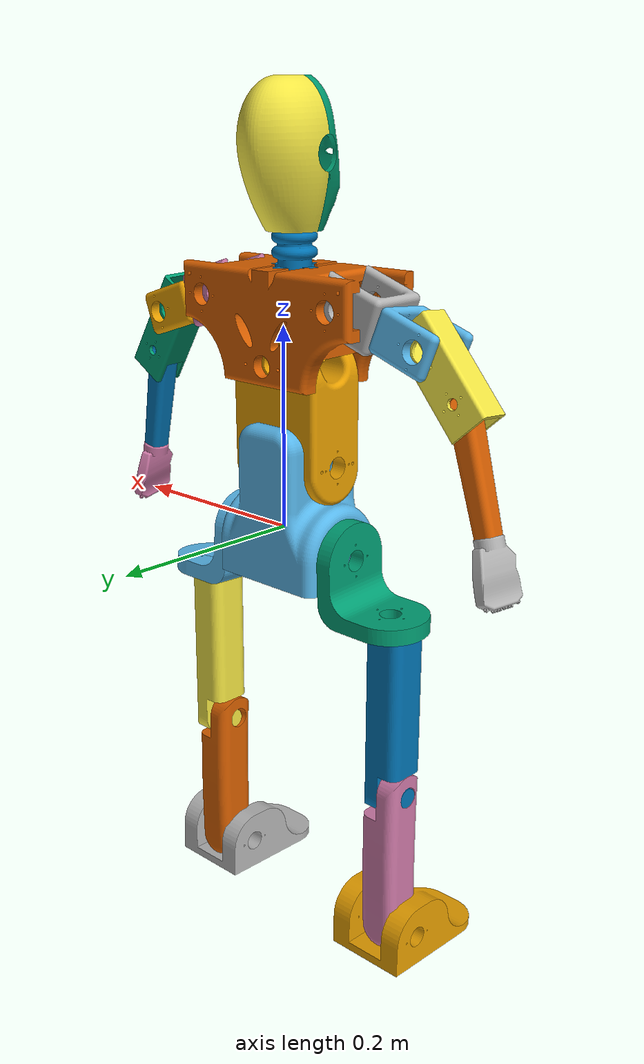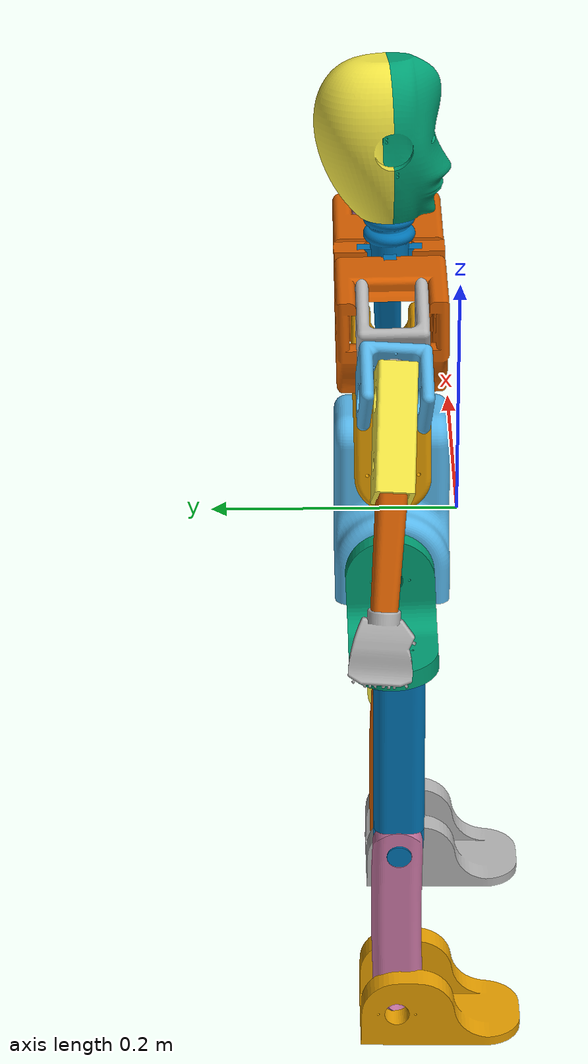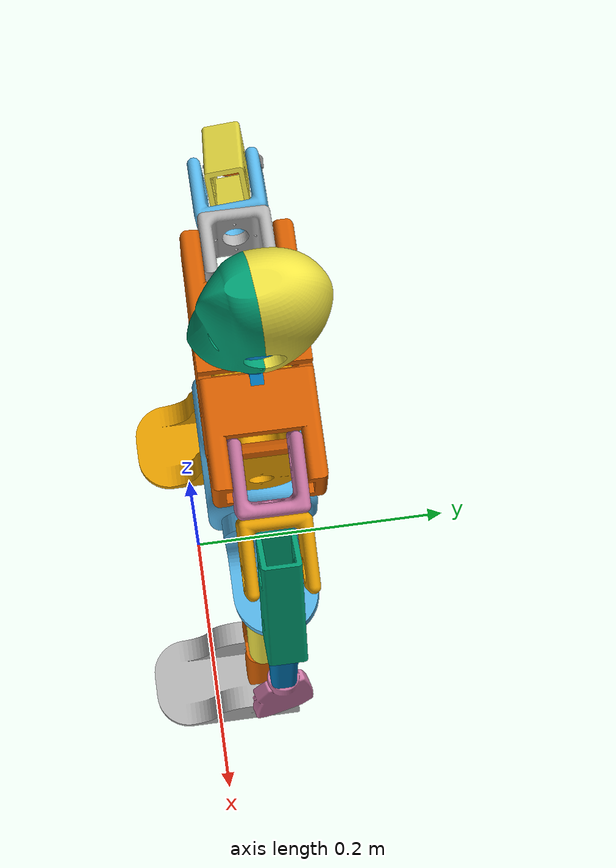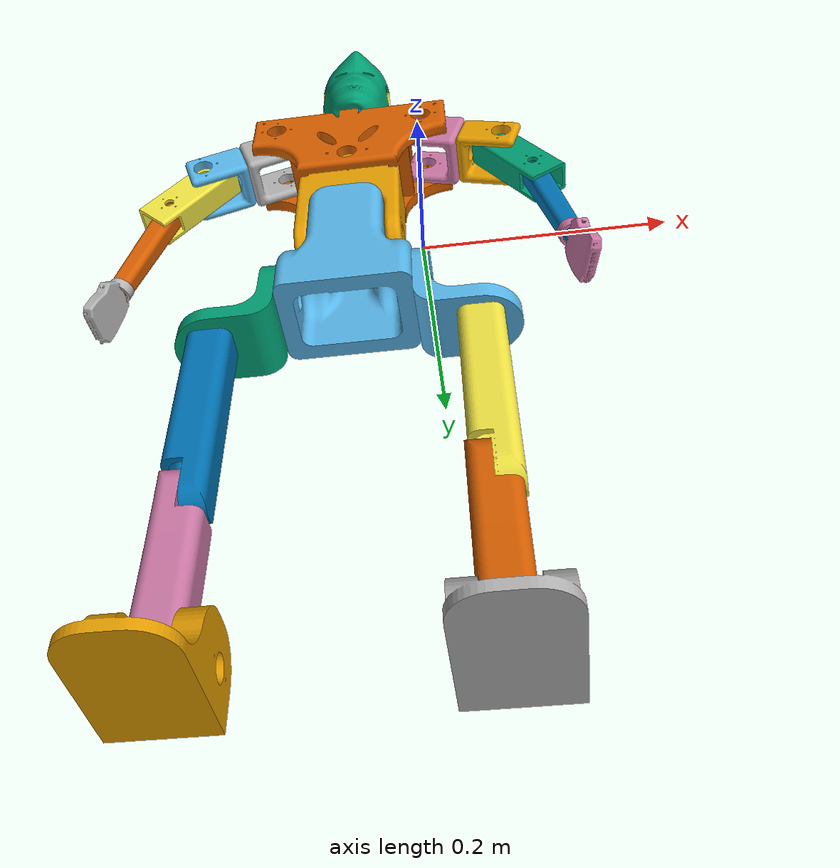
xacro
<?xml version="1.0"?>
<robot name="humanoid" xmlns:xacro="https://www.ros.org/wiki/xacro">

    <xacro:include filename="$(find humanoid_description)/urdf/humanoid.gazebo.xacro"/>

    <link name="base_footprint">
     <inertial>
       <origin rpy="0.0 0.0 0.0" xyz="0.0 0.0 0.0"/>
       <mass value="0.001"/>
       <inertia ixx="0.00001" ixy="0.0" ixz="0.0" iyy="0.00001" iyz="0.0" izz="0.00001"/>
     </inertial>
    </link>

    <!-- base_footprint to base_link -->
    <joint name="base_joint" type="fixed">
        <parent link="base_footprint"/>
        <child link="base_link"/>
        <origin xyz="0.0 0.0 0.0" rpy="0.0 0.0 0.0"/>
        <!-- prismatic adds: Prevents math crashes by setting motion bounds (in meters) -->
    </joint>

    <link name="base_link"> <!-- pelvis -->
        <inertial>
            <origin xyz="0.0 0.0 0.0" rpy="0.0 0.0 0.0"/>
            <mass value="15.0"/>
            <inertia ixx="0.1" ixy="0.0" ixz="0.0" iyy="0.1" iyz="0.0" izz="0.1"/>
        </inertial>
        <visual>
            <origin xyz="-0.343943 0.125478 -0.38665" rpy="1.570796 0.0 0.0"/>
            <geometry>
                <mesh filename="package://humanoid_description/meshes/Pelvis.STL" scale="0.001 0.001 0.001"/>
            </geometry>
        </visual>
        <collision>
            <origin xyz="-0.343943 0.125478 -0.38665" rpy="1.570796 0.0 0.0"/>
            <geometry>
                <mesh filename="package://humanoid_description/meshes/Pelvis.STL" scale="0.001 0.001 0.001"/>
            </geometry>
        </collision>
    </link>

    <!-- robot -->

    <joint name="frontface-to_neck_joint" type="fixed">
        <origin xyz="0.0 0.0 0.0" rpy="0.0 0.0 0.0"/>
        <parent link="chest-to-neck_link"/>
        <child link="frontface_link"/>
        <!-- prismatic adds: Prevents math crashes by setting motion bounds (in meters)  -->
    </joint>

    <link name="frontface_link">
        <inertial>
            <origin xyz="0.0 0.0 0.0" rpy="0.0 0.0 0.0"/>
            <mass value="15.0"/>
            <inertia ixx="0.1" ixy="0.0" ixz="0.0" iyy="0.1" iyz="0.0" izz="0.1"/>
        </inertial>
        <visual>
            <origin xyz="-0.343943 0.125478 -0.38665" rpy="1.570796 0.0 0.0"/>
            <geometry>
                <mesh filename="package://humanoid_description/meshes/head_complete_front.STL" scale="0.001 0.001 0.001"/>
            </geometry>
        </visual>
        <collision>
            <origin xyz="-0.343943 0.125478 -0.38665" rpy="1.570796 0.0 0.0"/>
            <geometry>
                <mesh filename="package://humanoid_description/meshes/head_complete_front.STL" scale="0.001 0.001 0.001"/>
            </geometry>
        </collision>
    </link>

    <joint name="backface-to_neck_joint" type="fixed">
        <origin xyz="0.0 0.0 0.0" rpy="0.0 0.0 0.0"/>
        <parent link="chest-to-neck_link"/>
        <child link="backface_link"/>
        <!-- prismatic adds: Prevents math crashes by setting motion bounds (in meters)  -->
    </joint>

    <link name="backface_link">
        <inertial>
            <origin xyz="0.0 0.0 0.0" rpy="0.0 0.0 0.0"/>
            <mass value="15.0"/>
            <inertia ixx="0.1" ixy="0.0" ixz="0.0" iyy="0.1" iyz="0.0" izz="0.1"/>
        </inertial>
        <visual>
            <origin xyz="-0.343943 0.125478 -0.38665" rpy="1.570796 0.0 0.0"/>
            <geometry>
                <mesh filename="package://humanoid_description/meshes/head_complete_back.STL" scale="0.001 0.001 0.001"/>
            </geometry>
        </visual>
        <collision>
            <origin xyz="-0.343943 0.125478 -0.38665" rpy="1.570796 0.0 0.0"/>
            <geometry>
                <mesh filename="package://humanoid_description/meshes/head_complete_back.STL" scale="0.001 0.001 0.001"/>
            </geometry>
        </collision>
    </link>

    <joint name="chest-to-neck_joint" type="fixed">
        <origin xyz="0.0 0.0 0.0" rpy="0.0 0.0 0.0"/>
        <parent link="chest-to-pelvic_link"/>
        <child link="chest-to-neck_link"/>
        <!-- prismatic adds: Prevents math crashes by setting motion bounds (in meters)  -->
    </joint>

    <link name="chest-to-neck_link">
        <inertial>
            <origin xyz="0.0 0.0 0.0" rpy="0.0 0.0 0.0"/>
            <mass value="15.0"/>
            <inertia ixx="0.1" ixy="0.0" ixz="0.0" iyy="0.1" iyz="0.0" izz="0.1"/>
        </inertial>
        <visual>
            <origin xyz="-0.343943 0.125478 -0.38665" rpy="1.570796 0.0 0.0"/>
            <geometry>
                <mesh filename="package://humanoid_description/meshes/RobotNeck.STL" scale="0.001 0.001 0.001"/>
            </geometry>
        </visual>
        <collision>
            <origin xyz="-0.343943 0.125478 -0.38665" rpy="1.570796 0.0 0.0"/>
            <geometry>
                <mesh filename="package://humanoid_description/meshes/RobotNeck.STL" scale="0.001 0.001 0.001"/>
            </geometry>
        </collision>
    </link>

    <joint name="chest_joint" type="fixed">
        <origin xyz="0.0 0.0 0.0" rpy="0.0 0.0 0.0"/>
        <parent link="base_link"/>
        <child link="chest-to-pelvic_link"/>
        <!-- prismatic adds: Prevents math crashes by setting motion bounds (in meters)  -->
    </joint>

    <link name="chest-to-pelvic_link">
        <inertial>
            <origin xyz="0.0 0.0 0.0" rpy="0.0 0.0 0.0"/>
            <mass value="15.0"/>
            <inertia ixx="0.1" ixy="0.0" ixz="0.0" iyy="0.1" iyz="0.0" izz="0.1"/>
        </inertial>
        <visual>
            <origin xyz="-0.343943 0.125478 -0.38665" rpy="1.570796 0.0 0.0"/>
            <geometry>
                <mesh filename="package://humanoid_description/meshes/chest.STL" scale="0.001 0.001 0.001"/>
            </geometry>
        </visual>
        <collision>
            <origin xyz="-0.343943 0.125478 -0.38665" rpy="1.570796 0.0 0.0"/>
            <geometry>
                <mesh filename="package://humanoid_description/meshes/chest.STL" scale="0.001 0.001 0.001"/>
            </geometry>
        </collision>
    </link>

    <joint name="left-torso-to-shoulder1_joint" type="fixed">
        <origin xyz="0.0 0.0 0.0" rpy="0.0 0.0 0.0"/>
        <parent link="leftshoulder-to-elbow_link"/>
        <child link="left-torso-to-shoulder1_link"/>
        <!-- prismatic adds: Prevents math crashes by setting motion bounds (in meters)  -->
    </joint>

    <link name="left-torso-to-shoulder1_link">
        <inertial>
            <origin xyz="0.0 0.0 0.0" rpy="0.0 0.0 0.0"/>
            <mass value="15.0"/>
            <inertia ixx="0.1" ixy="0.0" ixz="0.0" iyy="0.1" iyz="0.0" izz="0.1"/>
        </inertial>
        <visual>
            <origin xyz="-0.343943 0.125478 -0.38665" rpy="1.570796 0.0 0.0"/>
            <geometry>
                <mesh filename="package://humanoid_description/meshes/left-torso_to_limb1.STL" scale="0.001 0.001 0.001"/>
            </geometry>
        </visual>
        <collision>
            <origin xyz="-0.343943 0.125478 -0.38665" rpy="1.570796 0.0 0.0"/>
            <geometry>
                <mesh filename="package://humanoid_description/meshes/left-torso_to_limb1.STL" scale="0.001 0.001 0.001"/>
            </geometry>
        </collision>
    </link>

    <joint name="left-torso-to-shoulder2_joint" type="fixed">
        <origin xyz="0.0 0.0 0.0" rpy="0.0 0.0 0.0"/>
        <parent link="left-torso-to-shoulder1_link"/>
        <child link="left-torso-to-shoulder2_link"/>
        <!-- prismatic adds: Prevents math crashes by setting motion bounds (in meters)  -->
    </joint>

    <link name="left-torso-to-shoulder2_link">
        <inertial>
            <origin xyz="0.0 0.0 0.0" rpy="0.0 0.0 0.0"/>
            <mass value="15.0"/>
            <inertia ixx="0.1" ixy="0.0" ixz="0.0" iyy="0.1" iyz="0.0" izz="0.1"/>
        </inertial>
        <visual>
            <origin xyz="-0.343943 0.125478 -0.38665" rpy="1.570796 0.0 0.0"/>
            <geometry>
                <mesh filename="package://humanoid_description/meshes/left-torso_to_limb2.STL" scale="0.001 0.001 0.001"/>
            </geometry>
        </visual>
        <collision>
            <origin xyz="-0.343943 0.125478 -0.38665" rpy="1.570796 0.0 0.0"/>
            <geometry>
                <mesh filename="package://humanoid_description/meshes/left-torso_to_limb2.STL" scale="0.001 0.001 0.001"/>
            </geometry>
        </collision>
    </link>

    <joint name="right-torso-to-shoulder1_joint" type="fixed">
        <origin xyz="0.0 0.0 0.0" rpy="0.0 0.0 0.0"/>
        <parent link="leftshoulder-to-elbow_link"/>
        <child link="right-torso-to-shoulder1_link"/>
        <!-- prismatic adds: Prevents math crashes by setting motion bounds (in meters)  -->
    </joint>

    <link name="right-torso-to-shoulder1_link">
        <inertial>
            <origin xyz="0.0 0.0 0.0" rpy="0.0 0.0 0.0"/>
            <mass value="15.0"/>
            <inertia ixx="0.1" ixy="0.0" ixz="0.0" iyy="0.1" iyz="0.0" izz="0.1"/>
        </inertial>
        <visual>i
            <origin xyz="-0.343943 0.125478 -0.38665" rpy="1.570796 0.0 0.0"/>
            <geometry>
                <mesh filename="package://humanoid_description/meshes/right-torso_to_limb1.STL" scale="0.001 0.001 0.001"/>
            </geometry>
        </visual>
        <collision>
            <origin xyz="-0.343943 0.125478 -0.38665" rpy="1.570796 0.0 0.0"/>
            <geometry>
                <mesh filename="package://humanoid_description/meshes/right-torso_to_limb1.STL" scale="0.001 0.001 0.001"/>
            </geometry>
        </collision>
    </link>

    <joint name="right-torso-to-shoulder2_joint" type="fixed">
        <origin xyz="0.0 0.0 0.0" rpy="0.0 0.0 0.0"/>
        <parent link="right-torso-to-shoulder1_link"/>
        <child link="right-torso-to-shoulder2_link"/>
        <!-- prismatic adds: Prevents math crashes by setting motion bounds (in meters)  -->
    </joint>

    <link name="right-torso-to-shoulder2_link">
        <inertial>
            <origin xyz="0.0 0.0 0.0" rpy="0.0 0.0 0.0"/>
            <mass value="15.0"/>
            <inertia ixx="0.1" ixy="0.0" ixz="0.0" iyy="0.1" iyz="0.0" izz="0.1"/>
        </inertial>
        <visual>
            <origin xyz="-0.343943 0.125478 -0.38665" rpy="1.570796 0.0 0.0"/>
            <geometry>
                <mesh filename="package://humanoid_description/meshes/right-torso_to_limb2.STL" scale="0.001 0.001 0.001"/>
            </geometry>
        </visual>
        <collision>
            <origin xyz="-0.343943 0.125478 -0.38665" rpy="1.570796 0.0 0.0"/>
            <geometry>
                <mesh filename="package://humanoid_description/meshes/right-torso_to_limb2.STL" scale="0.001 0.001 0.001"/>
            </geometry>
        </collision>
    </link>

    <joint name="leftshoulder_joint" type="fixed">
        <origin xyz="0.0 0.0 0.0" rpy="0.0 0.0 0.0"/>
        <parent link="chest-to-pelvic_link"/>
        <child link="leftshoulder-to-elbow_link"/>
        <!-- prismatic adds: Prevents math crashes by setting motion bounds (in meters)  -->
    </joint>

    <link name="leftshoulder-to-elbow_link">
        <inertial>
            <origin xyz="0.0 0.0 0.0" rpy="0.0 0.0 0.0"/>
            <mass value="15.0"/>
            <inertia ixx="0.1" ixy="0.0" ixz="0.0" iyy="0.1" iyz="0.0" izz="0.1"/>
        </inertial>
        <visual>
            <origin xyz="-0.343943 0.125478 -0.38665" rpy="1.570796 0.0 0.0"/>
            <geometry>
                <mesh filename="package://humanoid_description/meshes/leftshoulder_to_elbow.STL" scale="0.001 0.001 0.001"/>
            </geometry>
        </visual>
        <collision>
            <origin xyz="-0.343943 0.125478 -0.38665" rpy="1.570796 0.0 0.0"/>
            <geometry>
                <mesh filename="package://humanoid_description/meshes/leftshoulder_to_elbow.STL" scale="0.001 0.001 0.001"/>
            </geometry>
        </collision>
    </link>

    <joint name="rightshoulder_joint" type="fixed">
        <origin xyz="0.0 0.0 0.0" rpy="0.0 0.0 0.0"/>
        <parent link="chest-to-pelvic_link"/>
        <child link="rightshoulder-to-elbow_link"/>
        <!-- prismatic adds: Prevents math crashes by setting motion bounds (in meters)  -->
    </joint>

    <link name="rightshoulder-to-elbow_link">
        <inertial>
            <origin xyz="0.0 0.0 0.0" rpy="0.0 0.0 0.0"/>
            <mass value="15.0"/>
            <inertia ixx="0.1" ixy="0.0" ixz="0.0" iyy="0.1" iyz="0.0" izz="0.1"/>
        </inertial>
        <visual>
            <origin xyz="-0.343943 0.125478 -0.38665" rpy="1.570796 0.0 0.0"/>
            <geometry>
                <mesh filename="package://humanoid_description/meshes/rightshoulder_to_elbow.STL" scale="0.001 0.001 0.001"/>
            </geometry>
        </visual>
        <collision>
            <origin xyz="-0.343943 0.125478 -0.38665" rpy="1.570796 0.0 0.0"/>
            <geometry>
                <mesh filename="package://humanoid_description/meshes/rightshoulder_to_elbow.STL" scale="0.001 0.001 0.001"/>
            </geometry>
        </collision>
    </link>

    <joint name="leftelbow-to-wrist_joint" type="fixed">
        <origin xyz="0.0 0.0 0.0" rpy="0.0 0.0 0.0"/>
        <parent link="leftshoulder-to-elbow_link"/>
        <child link="leftelbow-to-wrist_link"/>
        <!-- prismatic adds: Prevents math crashes by setting motion bounds (in meters)  -->
    </joint>

    <link name="leftelbow-to-wrist_link">
        <inertial>
            <origin xyz="0.0 0.0 0.0" rpy="0.0 0.0 0.0"/>
            <mass value="15.0"/>
            <inertia ixx="0.1" ixy="0.0" ixz="0.0" iyy="0.1" iyz="0.0" izz="0.1"/>
        </inertial>
        <visual>
            <origin xyz="-0.343943 0.125478 -0.38665" rpy="1.570796 0.0 0.0"/>
            <geometry>
                <mesh filename="package://humanoid_description/meshes/leftelbow_to_wrist.STL" scale="0.001 0.001 0.001"/>
            </geometry>
        </visual>
        <collision>
            <origin xyz="-0.343943 0.125478 -0.38665" rpy="1.570796 0.0 0.0"/>
            <geometry>
                <mesh filename="package://humanoid_description/meshes/leftelbow_to_wrist.STL" scale="0.001 0.001 0.001"/>
            </geometry>
        </collision>
    </link>

    <joint name="rightelbow-to-wrist_joint" type="fixed">
        <origin xyz="0.0 0.0 0.0" rpy="0.0 0.0 0.0"/>
        <parent link="rightshoulder-to-elbow_link"/>
        <child link="rightelbow-to-wrist_link"/>
        <!-- prismatic adds: Prevents math crashes by setting motion bounds (in meters)  -->
    </joint>

    <link name="rightelbow-to-wrist_link">
        <inertial>
            <origin xyz="0.0 0.0 0.0" rpy="0.0 0.0 0.0"/>
            <mass value="15.0"/>
            <inertia ixx="0.1" ixy="0.0" ixz="0.0" iyy="0.1" iyz="0.0" izz="0.1"/>
        </inertial>
        <visual>
            <origin xyz="-0.343943 0.125478 -0.38665" rpy="1.570796 0.0 0.0"/>
            <geometry>
                <mesh filename="package://humanoid_description/meshes/rightelbow_to_wrist.STL" scale="0.001 0.001 0.001"/>
            </geometry>
        </visual>
        <collision>
            <origin xyz="-0.343943 0.125478 -0.38665" rpy="1.570796 0.0 0.0"/>
            <geometry>
                <mesh filename="package://humanoid_description/meshes/rightelbow_to_wrist.STL" scale="0.001 0.001 0.001"/>
            </geometry>
        </collision>
    </link>

    <joint name="leftwrist-to-palm_joint" type="fixed">
        <origin xyz="0.0 0.0 0.0" rpy="0.0 0.0 0.0"/>
        <parent link="leftelbow-to-wrist_link"/>
        <child link="leftpalm_link"/>
        <!-- prismatic adds: Prevents math crashes by setting motion bounds (in meters)  -->
    </joint>

    <link name="leftpalm_link">
        <inertial>
            <origin xyz="0.0 0.0 0.0" rpy="0.0 0.0 0.0"/>
            <mass value="15.0"/>
            <inertia ixx="0.1" ixy="0.0" ixz="0.0" iyy="0.1" iyz="0.0" izz="0.1"/>
        </inertial>
        <visual>
            <origin xyz="-0.343943 0.125478 -0.38665" rpy="1.570796 0.0 0.0"/>
            <geometry>
                <mesh filename="package://humanoid_description/meshes/left_palm.STL" scale="0.001 0.001 0.001"/>
            </geometry>
        </visual>
        <collision>
            <origin xyz="-0.343943 0.125478 -0.38665" rpy="1.570796 0.0 0.0"/>
            <geometry>
                <mesh filename="package://humanoid_description/meshes/left_palm.STL" scale="0.001 0.001 0.001"/>
            </geometry>
        </collision>
    </link>

    <joint name="rightwrist-to-palm_joint" type="fixed">
        <origin xyz="0.0 0.0 0.0" rpy="0.0 0.0 0.0"/>
        <parent link="rightelbow-to-wrist_link"/>
        <child link="rightpalm_link"/>
        <!-- prismatic adds: Prevents math crashes by setting motion bounds (in meters)  -->
    </joint>

    <link name="rightpalm_link">
        <inertial>
            <origin xyz="0.0 0.0 0.0" rpy="0.0 0.0 0.0"/>
            <mass value="15.0"/>
            <inertia ixx="0.1" ixy="0.0" ixz="0.0" iyy="0.1" iyz="0.0" izz="0.1"/>
        </inertial>
        <visual>
            <origin xyz="-0.343943 0.125478 -0.38665" rpy="1.570796 0.0 0.0"/>
            <geometry>
                <mesh filename="package://humanoid_description/meshes/right_palm.STL" scale="0.001 0.001 0.001"/>
            </geometry>
        </visual>
        <collision>
            <origin xyz="-0.343943 0.125478 -0.38665" rpy="1.570796 0.0 0.0"/>
            <geometry>
                <mesh filename="package://humanoid_description/meshes/right_palm.STL" scale="0.001 0.001 0.001"/>
            </geometry>
        </collision>
    </link>

    <joint name="pelvis_to_pelvic-connector" type="fixed">
        <origin xyz="0.0 0.0 0.0" rpy="0.0 0.0 0.0"/>
        <parent link="base_link"/>
        <child link="pelvic-to-chest_link"/>
        <!-- prismatic adds: Prevents math crashes by setting motion bounds (in meters)  -->
    </joint>

    <link name="pelvic-to-chest_link">
        <inertial>
            <origin xyz="0.0 0.0 0.0" rpy="0.0 0.0 0.0"/>
            <mass value="15.0"/>
            <inertia ixx="0.1" ixy="0.0" ixz="0.0" iyy="0.1" iyz="0.0" izz="0.1"/>
        </inertial>
        <visual>
            <origin xyz="-0.343943 0.125478 -0.38665" rpy="1.570796 0.0 0.0"/>
            <geometry>
                <mesh filename="package://humanoid_description/meshes/pelvic_to_chest.STL" scale="0.001 0.001 0.001"/>
            </geometry>
        </visual>
        <collision>
            <origin xyz="-0.343943 0.125478 -0.38665" rpy="1.570796 0.0 0.0"/>
            <geometry>
                <mesh filename="package://humanoid_description/meshes/pelvic_to_chest.STL" scale="0.001 0.001 0.001"/>
            </geometry>
        </collision>
    </link>

    <joint name="pelvic-to-leftleg_joint" type="fixed">
        <origin xyz="0.0 0.0 0.0" rpy="0.0 0.0 0.0"/>
        <parent link="pelvic-to-chest_link"/>
        <child link="pelvic-to-leftleg_link"/>
        <!-- prismatic adds: Prevents math crashes by setting motion bounds (in meters)  -->
    </joint>

    <link name="pelvic-to-leftleg_link">
        <inertial>
            <origin xyz="0.0 0.0 0.0" rpy="0.0 0.0 0.0"/>
            <mass value="15.0"/>
            <inertia ixx="0.1" ixy="0.0" ixz="0.0" iyy="0.1" iyz="0.0" izz="0.1"/>
        </inertial>
        <visual>
            <origin xyz="-0.343943 0.125478 -0.38665" rpy="1.570796 0.0 0.0"/>
            <geometry>
                <mesh filename="package://humanoid_description/meshes/left-torso_to_femur.STL" scale="0.001 0.001 0.001"/>
            </geometry>
        </visual>
        <collision>
            <origin xyz="-0.343943 0.125478 -0.38665" rpy="1.570796 0.0 0.0"/>
            <geometry>
                <mesh filename="package://humanoid_description/meshes/left-torso_to_femur.STL" scale="0.001 0.001 0.001"/>
            </geometry>
        </collision>
    </link>

    <joint name="pelvic-to-rightleg_joint" type="fixed">
        <origin xyz="0.0 0.0 0.0" rpy="0.0 0.0 0.0"/>
        <parent link="pelvic-to-chest_link"/>
        <child link="pelvic-to-rightleg_link"/>
        <!-- prismatic adds: Prevents math crashes by setting motion bounds (in meters)  -->
    </joint>

    <link name="pelvic-to-rightleg_link">
        <inertial>
            <origin xyz="0.0 0.0 0.0" rpy="0.0 0.0 0.0"/>
            <mass value="15.0"/>
            <inertia ixx="0.1" ixy="0.0" ixz="0.0" iyy="0.1" iyz="0.0" izz="0.1"/>
        </inertial>
        <visual>
            <origin xyz="0.197943 -0.011478 -0.38665" rpy="1.570796 0.0 3.14159"/>
            <geometry>
                <mesh filename="package://humanoid_description/meshes/left-torso_to_femur.STL" scale="0.001 0.001 0.001"/>
            </geometry>
        </visual>
        <collision>
            <origin xyz="0.197943 -0.011478 -0.38665" rpy="1.570796 0.0 3.14159"/>
            <geometry>
                <mesh filename="package://humanoid_description/meshes/left-torso_to_femur.STL" scale="0.001 0.001 0.001"/>
            </geometry>
        </collision>
    </link>

    <joint name="torso-to-leftleg_joint" type="fixed">
        <origin xyz="0.0 0.0 0.0" rpy="0.0 0.0 0.0"/>
        <parent link="pelvic-to-leftleg_link"/>
        <child link="torso-to-leftleg_link"/>
        <!-- prismatic adds: Prevents math crashes by setting motion bounds (in meters)  -->
    </joint>

    <link name="torso-to-leftleg_link">
        <inertial>
            <origin xyz="0.0 0.0 0.0" rpy="0.0 0.0 0.0"/>
            <mass value="15.0"/>
            <inertia ixx="0.1" ixy="0.0" ixz="0.0" iyy="0.1" iyz="0.0" izz="0.1"/>
        </inertial>
        <visual>
            <origin xyz="0.500943 -0.066478 -0.40265" rpy="1.570796 0.0 3.14159"/>
            <geometry>
                <mesh filename="package://humanoid_description/meshes/Waist_to_knee.STL" scale="0.001 0.001 0.001"/>
            </geometry>
        </visual>
        <collision>
            <origin xyz="0.500943 -0.066478 -0.40265" rpy="1.570796 0.0 3.14159"/>
            <geometry>
                <mesh filename="package://humanoid_description/meshes/Waist_to_knee.STL" scale="0.001 0.001 0.001"/>
            </geometry>
        </collision>
    </link>

    <joint name="torso-to-rightleg_joint" type="fixed">
        <origin xyz="0.0 0.0 0.0" rpy="0.0 0.0 0.0"/>
        <parent link="pelvic-to-rightleg_link"/>
        <child link="torso-to-rightleg_link"/>
        <!-- prismatic adds: Prevents math crashes by setting motion bounds (in meters)  -->
    </joint>

    <link name="torso-to-rightleg_link">
        <inertial>
            <origin xyz="0.0 0.0 0.0" rpy="0.0 0.0 0.0"/>
            <mass value="15.0"/>
            <inertia ixx="0.1" ixy="0.0" ixz="0.0" iyy="0.1" iyz="0.0" izz="0.1"/>
        </inertial>
        <visual>
            <origin xyz="0.268943 -0.066478 -0.40265" rpy="1.570796 0.0 3.14159"/>
            <geometry>
                <mesh filename="package://humanoid_description/meshes/Waist_to_knee.STL" scale="0.001 0.001 0.001"/>
            </geometry>
        </visual>
        <collision>
            <origin xyz="0.268943 -0.066478 -0.40265" rpy="1.570796 0.0 3.14159"/>
            <geometry>
                <mesh filename="package://humanoid_description/meshes/Waist_to_knee.STL" scale="0.001 0.001 0.001"/>
            </geometry>
        </collision>
    </link>

    <joint name="leftknee-to-ankle_joint" type="fixed">
        <origin xyz="0.0 0.0 0.0" rpy="0.0 0.0 0.0"/>
        <parent link="torso-to-leftleg_link"/>
        <child link="leftknee-to-ankle_link"/>
        <!-- prismatic adds: Prevents math crashes by setting motion bounds (in meters)  -->
    </joint>

    <link name="leftknee-to-ankle_link">
        <inertial>
            <origin xyz="0.0 0.0 0.0" rpy="0.0 0.0 0.0"/>
            <mass value="15.0"/>
            <inertia ixx="0.1" ixy="0.0" ixz="0.0" iyy="0.1" iyz="0.0" izz="0.1"/>
        </inertial>
        <visual>
            <origin xyz="0.195943 0.022478 -0.38665" rpy="1.440796 0.0 3.14159"/>
            <geometry>
                <mesh filename="package://humanoid_description/meshes/leftKnee_to_Ankle.STL" scale="0.001 0.001 0.001"/>
            </geometry>
        </visual>
        <collision>
            <origin xyz="0.195943 0.022478 -0.38665" rpy="1.440796 0.0 3.14159"/>
            <geometry>
                <mesh filename="package://humanoid_description/meshes/leftKnee_to_Ankle.STL" scale="0.001 0.001 0.001"/>
            </geometry>
        </collision>
    </link>

    <joint name="rightknee-to-ankle_joint" type="fixed">
        <origin xyz="0.0 0.0 0.0" rpy="0.0 0.0 0.0"/>
        <parent link="torso-to-rightleg_link"/>
        <child link="rightknee-to-ankle_link"/>
        <!-- prismatic adds: Prevents math crashes by setting motion bounds (in meters)  -->
    </joint>

    <link name="rightknee-to-ankle_link">
        <inertial>
            <origin xyz="0.0 0.0 0.0" rpy="0.0 0.0 0.0"/>
            <mass value="15.0"/>
            <inertia ixx="0.1" ixy="0.0" ixz="0.0" iyy="0.1" iyz="0.0" izz="0.1"/>
        </inertial>
        <visual>
            <origin xyz="0.195943 0.015522 -0.38665" rpy="1.440796 0.0 3.14159"/>
            <geometry>
                <mesh filename="package://humanoid_description/meshes/rightKnee_to_Ankle.STL" scale="0.001 0.001 0.001"/>
            </geometry>
        </visual>
        <collision>
            <origin xyz="0.195943 0.015522 -0.38665" rpy="1.440796 0.0 3.14159"/>
            <geometry>
                <mesh filename="package://humanoid_description/meshes/rightKnee_to_Ankle.STL" scale="0.001 0.001 0.001"/>
            </geometry>
        </collision>
    </link>

    <joint name="leftankle-to-feet_joint" type="fixed">
        <origin xyz="0.0 0.0 0.0" rpy="0.0 0.0 0.0"/>
        <parent link="leftknee-to-ankle_link"/>
        <child link="leftankle-to-feet_link"/>
        <!-- prismatic adds: Prevents math crashes by setting motion bounds (in meters)  -->
    </joint>

    <link name="leftankle-to-feet_link">
        <inertial>
            <origin xyz="0.0 0.0 0.0" rpy="0.0 0.0 0.0"/>
            <mass value="15.0"/>
            <inertia ixx="0.1" ixy="0.0" ixz="0.0" iyy="0.1" iyz="0.0" izz="0.1"/>
        </inertial>
        <visual>
            <origin xyz="-0.343943 0.081978 -0.38285" rpy="1.532796 0.0 0.0"/>
            <geometry>
                <mesh filename="package://humanoid_description/meshes/left_foot.STL" scale="0.001 0.001 0.001"/>
            </geometry>
        </visual>
        <collision>
            <origin xyz="-0.343943 0.081978 -0.38285" rpy="1.532796 0.0 0.0"/>
            <geometry>
                <mesh filename="package://humanoid_description/meshes/left_foot.STL" scale="0.001 0.001 0.001"/>
            </geometry>
        </collision>
    </link>

    <joint name="rightankle-to-feet_joint" type="fixed">
        <origin xyz="0.0 0.0 0.0" rpy="0.0 0.0 0.0"/>
        <parent link="rightknee-to-ankle_link"/>
        <child link="rightankle-to-feet_link"/>
        <!-- prismatic adds: Prevents math crashes by setting motion bounds (in meters)  -->
    </joint>

    <link name="rightankle-to-feet_link">
        <inertial>
            <origin xyz="0.0 0.0 0.0" rpy="0.0 0.0 0.0"/>
            <mass value="15.0"/>
            <inertia ixx="0.1" ixy="0.0" ixz="0.0" iyy="0.1" iyz="0.0" izz="0.1"/>
        </inertial>
        <visual>
            <origin xyz="-0.343943 0.081978 -0.38285" rpy="1.532796 0.0 0.0"/>
            <geometry>
                <mesh filename="package://humanoid_description/meshes/right_foot.STL" scale="0.001 0.001 0.001"/>
            </geometry>
        </visual>
        <collision>
            <origin xyz="-0.343943 0.081978 -0.38285" rpy="1.532796 0.0 0.0"/>
            <geometry>
                <mesh filename="package://humanoid_description/meshes/right_foot.STL" scale="0.001 0.001 0.001"/>
            </geometry>
        </collision>
    </link>

</robot>
